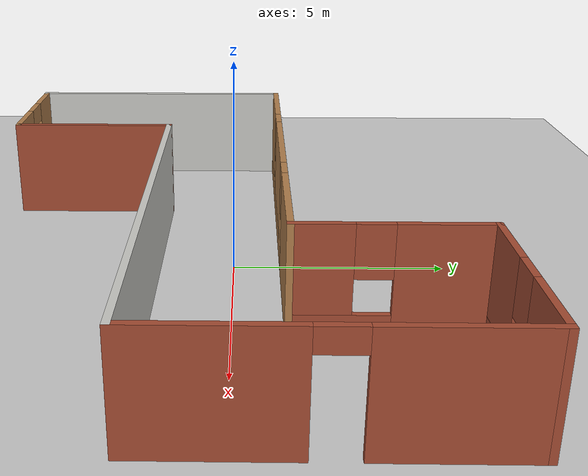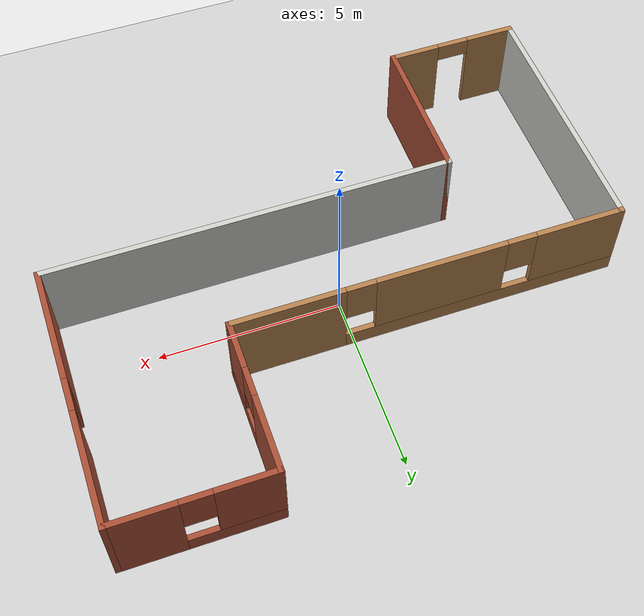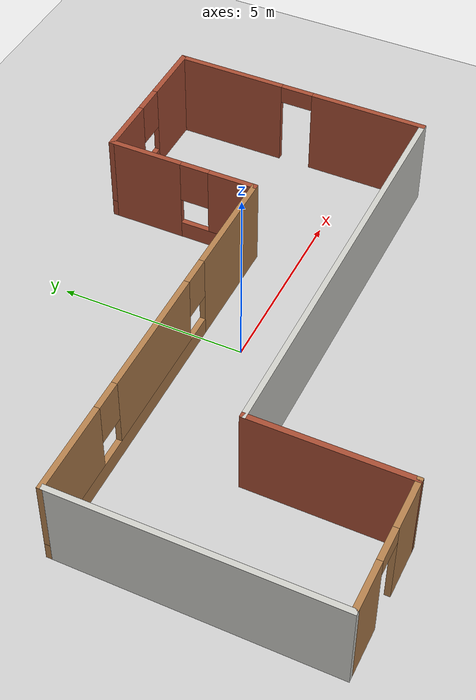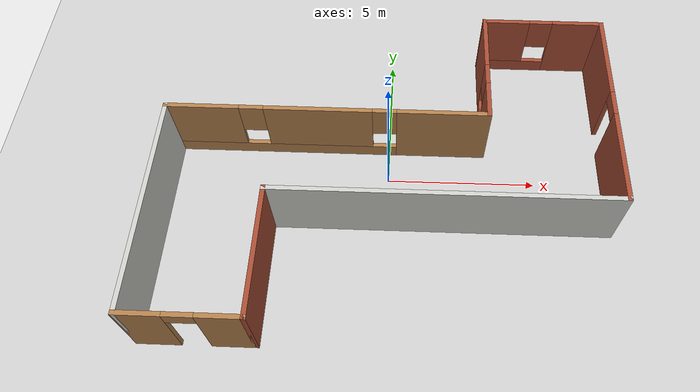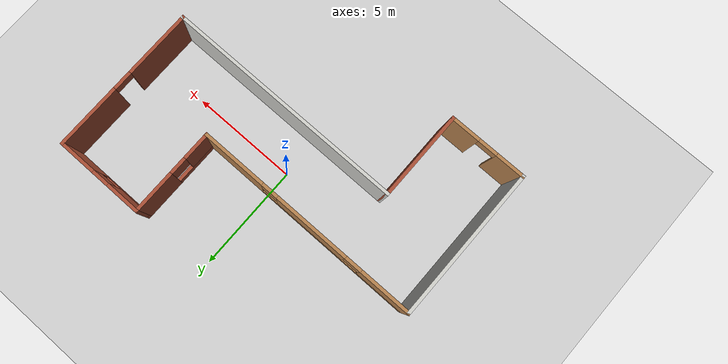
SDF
<sdf version="1.6">
 <world name="default">
  <light name="sun" type="directional">
   <pose>0 0 10 0 -0 0</pose>
   <diffuse>0.8 0.8 0.8 1</diffuse>
   <specular>0.1 0.1 0.1 1</specular>
   <attenuation>
    <range>1000</range>
    <constant>0.9</constant>
    <linear>0.01</linear>
    <quadratic>0.001</quadratic>
   </attenuation>
   <direction>-0.5 0.5 -1</direction>
  </light>
  <model name="ground_plane">
   <static>1</static>
   <link name="link">
    <collision name="collision">
     <geometry><plane><normal>0 0 1</normal><size>100 100</size></plane></geometry>
     <surface><friction><ode><mu>100</mu><mu2>50</mu2></ode></friction></surface>
    </collision>
    <visual name="visual">
     <cast_shadows>0</cast_shadows>
     <geometry><plane><normal>0 0 1</normal><size>100 100</size></plane></geometry>
     <material>
      <script><uri>file://media/materials/scripts/gazebo.material</uri><name>Gazebo/Grey</name></script>
     </material>
    </visual>
   </link>
  </model>
  <gravity>0 0 -9.8</gravity>
  <magnetic_field>6e-06 2.3e-05 -4.2e-05</magnetic_field>
  <atmosphere type="adiabatic"/>
  <physics name="default_physics" default="0" type="ode">
   <max_step_size>0.001</max_step_size>
   <real_time_factor>1</real_time_factor>
   <real_time_update_rate>1000</real_time_update_rate>
  </physics>
  <scene><ambient>0.4 0.4 0.4 1</ambient><background>0.7 0.7 0.7 1</background><shadows>1</shadows></scene>
  <spherical_coordinates>
   <surface_model>EARTH_WGS84</surface_model>
   <latitude_deg>0</latitude_deg>
   <longitude_deg>0</longitude_deg>
   <elevation>0</elevation>
   <heading_deg>0</heading_deg>
  </spherical_coordinates>
  <model name="home-service">
   <pose>0.001724 -0.330087 0 0 -0 0</pose>
   <link name="Wall_57">
    <collision name="Wall_57_Collision">
     <geometry><box><size>4.25 0.15 2.5</size></box></geometry>
     <pose>0 0 1.25 0 -0 0</pose>
    </collision>
    <visual name="Wall_57_Visual">
     <pose>0 0 1.25 0 -0 0</pose>
     <geometry><box><size>4.25 0.15 2.5</size></box></geometry>
     <material>
      <script><uri>file://media/materials/scripts/gazebo.material</uri><name>Gazebo/Bricks</name></script>
      <ambient>1 1 1 1</ambient>
     </material>
    </visual>
    <pose>-3.75 -3.55 0 0 -0 1.5708</pose>
   </link>
   <link name="Wall_60">
    <collision name="Wall_60_Collision">
     <geometry><box><size>11.25 0.15 2.5</size></box></geometry>
     <pose>0 0 1.25 0 -0 0</pose>
    </collision>
    <visual name="Wall_60_Visual">
     <pose>0 0 1.25 0 -0 0</pose>
     <geometry><box><size>11.25 0.15 2.5</size></box></geometry>
     <material>
      <script><uri>file://media/materials/scripts/gazebo.material</uri><name>Gazebo/CeilingTiled</name></script>
      <ambient>1 1 1 1</ambient>
     </material>
    </visual>
    <pose>1.8 -1.5 0 0 -0 0</pose>
   </link>
   <link name="Wall_61">
    <pose>7.35 2.05 0 0 -0 1.5708</pose>
    <visual name="Wall_61_Visual_0">
     <pose>-2.00395 0 1.25 0 -0 0</pose>
     <geometry><box><size>3.24209 0.15 2.5</size></box></geometry>
     <material>
      <script><uri>file://media/materials/scripts/gazebo.material</uri><name>Gazebo/Bricks</name></script>
      <ambient>1 1 1 1</ambient>
     </material>
    </visual>
    <collision name="Wall_61_Collision_0">
     <geometry><box><size>3.24209 0.15 2.5</size></box></geometry>
     <pose>-2.00395 0 1.25 0 -0 0</pose>
    </collision>
    <visual name="Wall_61_Visual_1">
     <pose>2.07104 0 1.25 0 -0 0</pose>
     <geometry><box><size>3.10791 0.15 2.5</size></box></geometry>
     <material>
      <script><uri>file://media/materials/scripts/gazebo.material</uri><name>Gazebo/Bricks</name></script>
      <ambient>1 1 1 1</ambient>
     </material>
    </visual>
    <collision name="Wall_61_Collision_1">
     <geometry><box><size>3.10791 0.15 2.5</size></box></geometry>
     <pose>2.07104 0 1.25 0 -0 0</pose>
    </collision>
    <visual name="Wall_61_Visual_2">
     <pose>0.067089 0 2.25 0 -0 0</pose>
     <geometry><box><size>0.9 0.15 0.5</size></box></geometry>
     <material>
      <script><uri>file://media/materials/scripts/gazebo.material</uri><name>Gazebo/Bricks</name></script>
      <ambient>1 1 1 1</ambient>
     </material>
    </visual>
    <collision name="Wall_61_Collision_2">
     <geometry><box><size>0.9 0.15 0.5</size></box></geometry>
     <pose>0.067089 0 2.25 0 -0 0</pose>
    </collision>
   </link>
   <link name="Wall_62">
    <pose>5.3 5.6 0 0 -0 3.14159</pose>
    <visual name="Wall_62_Visual_0">
     <pose>-1.22734 0 1.25 0 -0 0</pose>
     <geometry><box><size>1.79533 0.15 2.5</size></box></geometry>
     <material>
      <script><uri>file://media/materials/scripts/gazebo.material</uri><name>Gazebo/Bricks</name></script>
      <ambient>1 1 1 1</ambient>
     </material>
    </visual>
    <collision name="Wall_62_Collision_0">
     <geometry><box><size>1.79533 0.15 2.5</size></box></geometry>
     <pose>-1.22734 0 1.25 0 -0 0</pose>
    </collision>
    <visual name="Wall_62_Visual_1">
     <pose>0.897664 0 0.25 0 -0 0</pose>
     <geometry><box><size>2.45467 0.15 0.5</size></box></geometry>
     <material>
      <script><uri>file://media/materials/scripts/gazebo.material</uri><name>Gazebo/Bricks</name></script>
      <ambient>1 1 1 1</ambient>
     </material>
    </visual>
    <collision name="Wall_62_Collision_1">
     <geometry><box><size>2.45467 0.15 0.5</size></box></geometry>
     <pose>0.897664 0 0.25 0 -0 0</pose>
    </collision>
    <visual name="Wall_62_Visual_2">
     <pose>1.29766 0 1.5 0 -0 0</pose>
     <geometry><box><size>1.65467 0.15 2</size></box></geometry>
     <material>
      <script><uri>file://media/materials/scripts/gazebo.material</uri><name>Gazebo/Bricks</name></script>
      <ambient>1 1 1 1</ambient>
     </material>
    </visual>
    <collision name="Wall_62_Collision_2">
     <geometry><box><size>1.65467 0.15 2</size></box></geometry>
     <pose>1.29766 0 1.5 0 -0 0</pose>
    </collision>
    <visual name="Wall_62_Visual_3">
     <pose>0.070327 0 1.9 0 -0 0</pose>
     <geometry><box><size>0.8 0.15 1.2</size></box></geometry>
     <material>
      <script><uri>file://media/materials/scripts/gazebo.material</uri><name>Gazebo/Bricks</name></script>
      <ambient>1 1 1 1</ambient>
     </material>
    </visual>
    <collision name="Wall_62_Collision_3">
     <geometry><box><size>0.8 0.15 1.2</size></box></geometry>
     <pose>0.070327 0 1.9 0 -0 0</pose>
    </collision>
   </link>
   <link name="Wall_63">
    <pose>3.25 3.55 0 0 0 -1.5708</pose>
    <visual name="Wall_63_Visual_0">
     <pose>-1.08107 0 1.25 0 -0 0</pose>
     <geometry><box><size>2.08786 0.15 2.5</size></box></geometry>
     <material>
      <script><uri>file://media/materials/scripts/gazebo.material</uri><name>Gazebo/Bricks</name></script>
      <ambient>1 1 1 1</ambient>
     </material>
    </visual>
    <collision name="Wall_63_Collision_0">
     <geometry><box><size>2.08786 0.15 2.5</size></box></geometry>
     <pose>-1.08107 0 1.25 0 -0 0</pose>
    </collision>
    <visual name="Wall_63_Visual_1">
     <pose>1.04393 0 0.25 0 -0 0</pose>
     <geometry><box><size>2.16214 0.15 0.5</size></box></geometry>
     <material>
      <script><uri>file://media/materials/scripts/gazebo.material</uri><name>Gazebo/Bricks</name></script>
      <ambient>1 1 1 1</ambient>
     </material>
    </visual>
    <collision name="Wall_63_Collision_1">
     <geometry><box><size>2.16214 0.15 0.5</size></box></geometry>
     <pose>1.04393 0 0.25 0 -0 0</pose>
    </collision>
    <visual name="Wall_63_Visual_2">
     <pose>1.44393 0 1.5 0 -0 0</pose>
     <geometry><box><size>1.36214 0.15 2</size></box></geometry>
     <material>
      <script><uri>file://media/materials/scripts/gazebo.material</uri><name>Gazebo/Bricks</name></script>
      <ambient>1 1 1 1</ambient>
     </material>
    </visual>
    <collision name="Wall_63_Collision_2">
     <geometry><box><size>1.36214 0.15 2</size></box></geometry>
     <pose>1.44393 0 1.5 0 -0 0</pose>
    </collision>
    <visual name="Wall_63_Visual_3">
     <pose>0.362861 0 1.9 0 -0 0</pose>
     <geometry><box><size>0.8 0.15 1.2</size></box></geometry>
     <material>
      <script><uri>file://media/materials/scripts/gazebo.material</uri><name>Gazebo/Bricks</name></script>
      <ambient>1 1 1 1</ambient>
     </material>
    </visual>
    <collision name="Wall_63_Collision_3">
     <geometry><box><size>0.8 0.15 1.2</size></box></geometry>
     <pose>0.362861 0 1.9 0 -0 0</pose>
    </collision>
   </link>
   <link name="Wall_64">
    <pose>-2.05 1.5 0 0 -0 3.14159</pose>
    <visual name="Wall_64_Visual_0">
     <pose>-3.82895 0 1.25 0 -0 0</pose>
     <geometry><box><size>3.0921 0.15 2.5</size></box></geometry>
     <material>
      <script><uri>file://media/materials/scripts/gazebo.material</uri><name>Gazebo/Wood</name></script>
      <ambient>1 1 1 1</ambient>
     </material>
    </visual>
    <collision name="Wall_64_Collision_0">
     <geometry><box><size>3.0921 0.15 2.5</size></box></geometry>
     <pose>-3.82895 0 1.25 0 -0 0</pose>
    </collision>
    <visual name="Wall_64_Visual_1">
     <pose>1.54605 0 0.25 0 -0 0</pose>
     <geometry><box><size>7.6579 0.15 0.5</size></box></geometry>
     <material>
      <script><uri>file://media/materials/scripts/gazebo.material</uri><name>Gazebo/Wood</name></script>
      <ambient>1 1 1 1</ambient>
     </material>
    </visual>
    <collision name="Wall_64_Collision_1">
     <geometry><box><size>7.6579 0.15 0.5</size></box></geometry>
     <pose>1.54605 0 0.25 0 -0 0</pose>
    </collision>
    <visual name="Wall_64_Visual_2">
     <pose>0.303726 0 1.5 0 -0 0</pose>
     <geometry><box><size>3.57325 0.15 2</size></box></geometry>
     <material>
      <script><uri>file://media/materials/scripts/gazebo.material</uri><name>Gazebo/Wood</name></script>
      <ambient>1 1 1 1</ambient>
     </material>
    </visual>
    <collision name="Wall_64_Collision_2">
     <geometry><box><size>3.57325 0.15 2</size></box></geometry>
     <pose>0.303726 0 1.5 0 -0 0</pose>
    </collision>
    <visual name="Wall_64_Visual_3">
     <pose>4.13267 0 1.5 0 -0 0</pose>
     <geometry><box><size>2.48465 0.15 2</size></box></geometry>
     <material>
      <script><uri>file://media/materials/scripts/gazebo.material</uri><name>Gazebo/Wood</name></script>
      <ambient>1 1 1 1</ambient>
     </material>
    </visual>
    <collision name="Wall_64_Collision_3">
     <geometry><box><size>2.48465 0.15 2</size></box></geometry>
     <pose>4.13267 0 1.5 0 -0 0</pose>
    </collision>
    <visual name="Wall_64_Visual_4">
     <pose>-1.8829 0 1.9 0 -0 0</pose>
     <geometry><box><size>0.8 0.15 1.2</size></box></geometry>
     <material>
      <script><uri>file://media/materials/scripts/gazebo.material</uri><name>Gazebo/Wood</name></script>
      <ambient>1 1 1 1</ambient>
     </material>
    </visual>
    <collision name="Wall_64_Collision_4">
     <geometry><box><size>0.8 0.15 1.2</size></box></geometry>
     <pose>-1.8829 0 1.9 0 -0 0</pose>
    </collision>
    <visual name="Wall_64_Visual_5">
     <pose>2.49035 0 1.9 0 -0 0</pose>
     <geometry><box><size>0.8 0.15 1.2</size></box></geometry>
     <material>
      <script><uri>file://media/materials/scripts/gazebo.material</uri><name>Gazebo/Wood</name></script>
      <ambient>1 1 1 1</ambient>
     </material>
    </visual>
    <collision name="Wall_64_Collision_5">
     <geometry><box><size>0.8 0.15 1.2</size></box></geometry>
     <pose>2.49035 0 1.9 0 -0 0</pose>
    </collision>
   </link>
   <link name="Wall_65">
    <collision name="Wall_65_Collision">
     <geometry><box><size>7.25 0.15 2.5</size></box></geometry>
     <pose>0 0 1.25 0 -0 0</pose>
    </collision>
    <visual name="Wall_65_Visual">
     <pose>0 0 1.25 0 -0 0</pose>
     <geometry><box><size>7.25 0.15 2.5</size></box></geometry>
     <material>
      <script><uri>file://media/materials/scripts/gazebo.material</uri><name>Gazebo/CeilingTiled</name></script>
      <ambient>1 1 1 1</ambient>
     </material>
    </visual>
    <pose>-7.35 -2.05 0 0 0 -1.5708</pose>
   </link>
   <link name="Wall_66">
    <pose>-5.55 -5.6 0 0 -0 0</pose>
    <visual name="Wall_66_Visual_0">
     <pose>-1.16944 0 1.25 0 -0 0</pose>
     <geometry><box><size>1.41112 0.15 2.5</size></box></geometry>
     <material>
      <script><uri>file://media/materials/scripts/gazebo.material</uri><name>Gazebo/Wood</name></script>
      <ambient>1 1 1 1</ambient>
     </material>
    </visual>
    <collision name="Wall_66_Collision_0">
     <geometry><box><size>1.41112 0.15 2.5</size></box></geometry>
     <pose>-1.16944 0 1.25 0 -0 0</pose>
    </collision>
    <visual name="Wall_66_Visual_1">
     <pose>1.15556 0 1.25 0 -0 0</pose>
     <geometry><box><size>1.43888 0.15 2.5</size></box></geometry>
     <material>
      <script><uri>file://media/materials/scripts/gazebo.material</uri><name>Gazebo/Wood</name></script>
      <ambient>1 1 1 1</ambient>
     </material>
    </visual>
    <collision name="Wall_66_Collision_1">
     <geometry><box><size>1.43888 0.15 2.5</size></box></geometry>
     <pose>1.15556 0 1.25 0 -0 0</pose>
    </collision>
    <visual name="Wall_66_Visual_2">
     <pose>-0.013876 0 2.25 0 -0 0</pose>
     <geometry><box><size>0.9 0.15 0.5</size></box></geometry>
     <material>
      <script><uri>file://media/materials/scripts/gazebo.material</uri><name>Gazebo/Wood</name></script>
      <ambient>1 1 1 1</ambient>
     </material>
    </visual>
    <collision name="Wall_66_Collision_2">
     <geometry><box><size>0.9 0.15 0.5</size></box></geometry>
     <pose>-0.013876 0 2.25 0 -0 0</pose>
    </collision>
   </link>
   <static>1</static>
  </model>
 </world>
</sdf>
